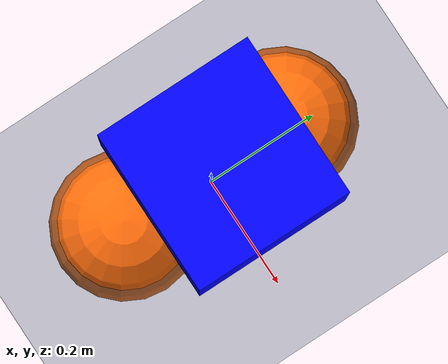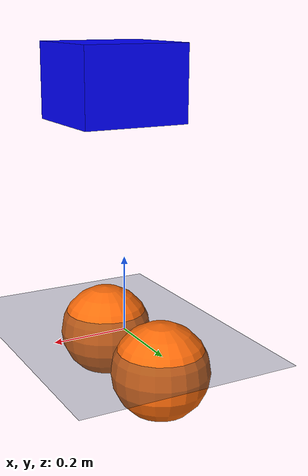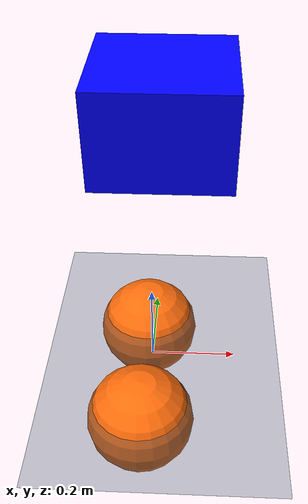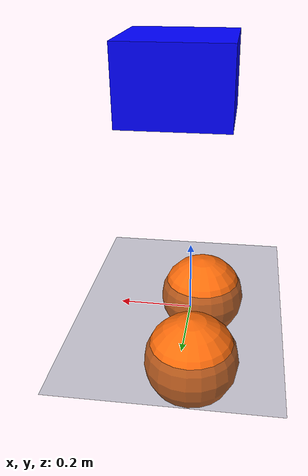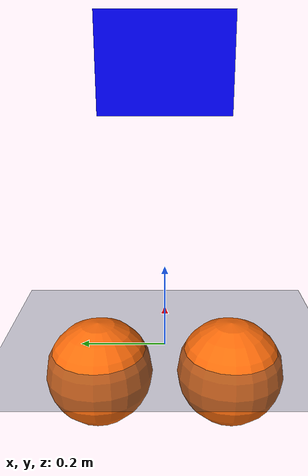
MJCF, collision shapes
<mujoco model="limx tron1 wf scene">
  <include file="mjx_tron1_wf.xml"/>

  <statistic center="0 0 0.4" extent="1.0"/>

  <visual>
    <headlight diffuse="0.6 0.6 0.6" ambient="0.3 0.3 0.3" specular="0 0 0"/>
    <rgba haze="0.15 0.25 0.35 1"/>
    <global azimuth="-130" elevation="-20"/>
  </visual>

  <asset>
    <texture type="skybox" builtin="gradient" rgb1="0.3 0.5 0.7" rgb2="0 0 0" width="512" height="3072"/>
    <texture type="2d" name="groundplane" builtin="checker" mark="edge" rgb1="0.2 0.3 0.4" rgb2="0.1 0.2 0.3"
      markrgb="0.8 0.8 0.8" width="300" height="300"/>
    <material name="groundplane" texture="groundplane" texuniform="true" texrepeat="5 5" reflectance="0.2"/>
  </asset>

  <worldbody>
    <light pos="0 0 1.5" dir="0 0 -1" directional="true"/>
    <geom name="floor" size="0 0 0.05" type="plane" material="groundplane"/>
  </worldbody>
</mujoco>

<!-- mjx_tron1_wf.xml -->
<mujoco model="limx_tron1_wf">
    <compiler angle="radian" meshdir="meshes" autolimits="true" />

    <option iterations="2" ls_iterations="5" timestep="0.02" gravity="0.0 0.0 -9.81">
        <flag eulerdamp="disable" />
    </option>

    <default>
        <default class="tron1">
            <joint armature="0.01" damping="0.01" />
            <geom margin="0.001" condim="1" friction="0.6" />
            <default class="visual">
                <geom type="mesh" contype="0" conaffinity="0" group="2" />
            </default>
            <!-- leg-link collision is disabled (contype/conaffinity 0): only the base box and the
                 two wheels touch the floor, which keeps the contact count at 3 for MJX. -->
            <default class="leg_collision">
                <geom group="3" contype="0" conaffinity="0" rgba="0 0 1 0" />
            </default>
            <default class="collision">
                <geom group="3" contype="0" conaffinity="1" />
                <default class="wheel">
                    <geom type="sphere" size="0.127" solimp="0.015 1 0.031"
                        friction="0.6 0.02 0.01" condim="3" rgba="1 0.423529 0.0392157 0.4" />
                </default>
            </default>
        </default>
    </default>

    <asset>
        <mesh name="base_Link" file="base_Link.STL" />
        <mesh name="abad_L_Link" file="abad_L_Link.STL" />
        <mesh name="hip_L_Link" file="hip_L_Link.STL" />
        <mesh name="knee_L_Link" file="knee_L_Link.STL" />
        <mesh name="wheel_L_Link" file="wheel_L_Link.STL" />
        <mesh name="abad_R_Link" file="abad_R_Link.STL" />
        <mesh name="hip_R_Link" file="hip_R_Link.STL" />
        <mesh name="knee_R_Link" file="knee_R_Link.STL" />
        <mesh name="wheel_R_Link" file="wheel_R_Link.STL" />
    </asset>

    <worldbody>
        <body name="base_Link" pos="0 0 0.72" childclass="tron1">
            <inertial pos="0.0457123 0.000139854 -0.163809"
                quat="0.972578 -0.00615364 -0.232461 0.00398682" mass="9.595"
                diaginertia="0.154712 0.11093 0.0846371" />
            <freejoint />
            <site name="imu" pos="0 0 0" />
            <camera name="track" mode="trackcom" pos="0 -2.3 0.9" xyaxes="1 0 0 0 0.707 0.707" />
            <geom class="visual" rgba="0.79216 0.81961 0.93333 1" mesh="base_Link" />
            <geom name="base_collision" class="collision" size="0.135 0.13 0.095" pos="0.03 0 -0.072"
                type="box" rgba="0 0 1 0" />

            <body name="abad_L_Link" pos="0.05556 0.105 -0.2602">
                <inertial pos="-0.06977 0.04479 0.00057"
                    quat="0.595024 0.579772 0.394141 0.393019" mass="1.469"
                    diaginertia="0.00252289 0.00208104 0.00139163" />
                <joint name="abad_L_Joint" axis="1 0 0" range="-0.38397 1.39626" />
                <geom class="visual" rgba="0.79216 0.81961 0.93333 1" mesh="abad_L_Link" />
                <geom name="abad_L_collision" class="leg_collision" type="cylinder" pos="-0.08 0 0"
                    euler="1.57 0 0" size="0.05 0.025" />

                <body name="hip_L_Link" pos="-0.077 0.0205 0">
                    <inertial pos="-0.02869 -0.0477 -0.03992"
                        quat="0.853885 0.192797 0.226903 0.426877" mass="2.3"
                        diaginertia="0.0233264 0.0230229 0.00277548" />
                    <joint name="hip_L_Joint" axis="0 1 0" range="-1.01229 1.39626" />
                    <geom class="visual" rgba="1 1 1 1" mesh="hip_L_Link" />
                    <geom name="hip_L_collision" class="leg_collision" type="cylinder"
                        pos="-0.1 -0.025 -0.14" euler="0 0.53 0" size="0.035 0.075" />

                    <body name="knee_L_Link" pos="-0.15 -0.0205 -0.25981">
                        <inertial pos="0.11913 0.01106 -0.20363"
                            quat="0.687012 -0.159981 -0.201582 0.679548" mass="1.49"
                            diaginertia="0.0177107 0.0171855 0.001015" />
                        <joint name="knee_L_Joint" axis="0 -1 0" range="-0.872665 1.36136" />
                        <geom class="visual" rgba="0.79216 0.81961 0.93333 1" mesh="knee_L_Link" />
                        <geom name="knee_L_collision" class="leg_collision" type="cylinder"
                            pos="0.078 0 -0.12" euler="0 -0.55 0" size="0.015 0.13" />

                        <body name="wheel_L_Link" pos="0.15 0.0435 -0.25981">
                            <inertial pos="3e-05 0.00807 -2e-05"
                                quat="0.683013 0.183016 0.183017 0.683011" mass="1.08"
                                diaginertia="0.00974272 0.00515568 0.00515344" />
                            <joint name="wheel_L_Joint" axis="0 1 0" limited="false"
                                frictionloss="0.01" />
                            <geom class="visual" rgba="0.26667 0.26667 0.26667 1"
                                mesh="wheel_L_Link" />
                            <site name="wheel_L" pos="0.0 0.008 0.0" group="1" />
                            <geom name="wheel_L_collision" class="wheel" pos="0.0 0.008 0.0" />
                        </body>
                    </body>
                </body>
            </body>

            <body name="abad_R_Link" pos="0.05556 -0.105 -0.2602">
                <inertial pos="-0.06977 -0.04479 0.00057"
                    quat="0.393019 0.394141 0.579772 0.595024" mass="1.469"
                    diaginertia="0.00252289 0.00208104 0.00139163" />
                <joint name="abad_R_Joint" axis="1 0 0" range="-1.39626 0.38397" />
                <geom class="visual" rgba="0.79216 0.81961 0.93333 1" mesh="abad_R_Link" />
                <geom name="abad_R_collision" class="leg_collision" type="cylinder" pos="-0.08 0 0"
                    euler="1.57 0 0" size="0.05 0.025" />

                <body name="hip_R_Link" pos="-0.077 -0.0205 0">
                    <inertial pos="-0.02869 0.0477 -0.03992"
                        quat="0.426877 0.226903 0.192797 0.853885" mass="2.3"
                        diaginertia="0.0233264 0.0230229 0.00277548" />
                    <joint name="hip_R_Joint" axis="0 -1 0" range="-1.39626 1.01229" />
                    <geom class="visual" rgba="1 1 1 1" mesh="hip_R_Link" />
                    <geom name="hip_R_collision" class="leg_collision" type="cylinder"
                        pos="-0.10 0.025 -0.14" euler="0 0.53 0" size="0.035 0.075" />

                    <body name="knee_R_Link" pos="-0.15 0.0205 -0.25981">
                        <inertial pos="0.11913 -0.01106 -0.20363"
                            quat="0.679548 -0.201582 -0.159981 0.687012" mass="1.49"
                            diaginertia="0.0177107 0.0171855 0.001015" />
                        <joint name="knee_R_Joint" axis="0 1 0" range="-1.36136 0.872665" />
                        <geom class="visual" rgba="0.79216 0.81961 0.93333 1" mesh="knee_R_Link" />
                        <geom name="knee_R_collision" class="leg_collision" type="cylinder"
                            pos="0.078 0 -0.12" euler="0 -0.55 0" size="0.015 0.13" />

                        <body name="wheel_R_Link" pos="0.15 -0.0435 -0.25981">
                            <inertial pos="3e-05 -0.00807 -2e-05"
                                quat="0.683011 0.183017 0.183016 0.683013" mass="1.08"
                                diaginertia="0.00974272 0.00515568 0.00515344" />
                            <joint name="wheel_R_Joint" axis="0 1 0" limited="false"
                                frictionloss="0.01" />
                            <geom class="visual" rgba="0.26667 0.26667 0.26667 1"
                                mesh="wheel_R_Link" />
                            <site name="wheel_R" pos="0.0 -0.008 0.0" group="1" />
                            <geom name="wheel_R_collision" class="wheel" pos="0.0 -0.008 0.0" />
                        </body>
                    </body>
                </body>
            </body>
        </body>
    </worldbody>

    <actuator>
        <motor name="abad_L_Joint" gear="1" joint="abad_L_Joint" ctrlrange="-80 80" />
        <motor name="hip_L_Joint" gear="1" joint="hip_L_Joint" ctrlrange="-80 80" />
        <motor name="knee_L_Joint" gear="1" joint="knee_L_Joint" ctrlrange="-80 80" />
        <motor name="wheel_L_Joint" gear="1" joint="wheel_L_Joint" ctrlrange="-40 40" />
        <motor name="abad_R_Joint" gear="1" joint="abad_R_Joint" ctrlrange="-80 80" />
        <motor name="hip_R_Joint" gear="1" joint="hip_R_Joint" ctrlrange="-80 80" />
        <motor name="knee_R_Joint" gear="1" joint="knee_R_Joint" ctrlrange="-80 80" />
        <motor name="wheel_R_Joint" gear="1" joint="wheel_R_Joint" ctrlrange="-40 40" />
    </actuator>

    <keyframe>
        <!-- Balanced crouch: wheel-ground contact sits directly under the whole-body COM.
             Solved by FK/least-squares against the leg kinematics, not hand-tuned. -->
        <key name="home"
            qpos="0 0 0.72  1 0 0 0  0 0.40397 0.91652 0  0 -0.40397 -0.91652 0" />
    </keyframe>
</mujoco>
